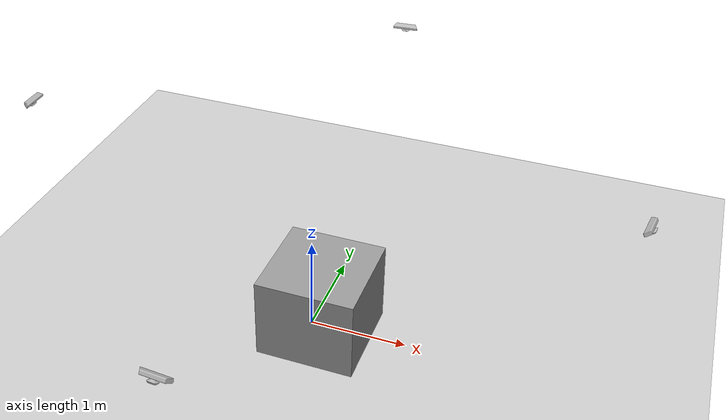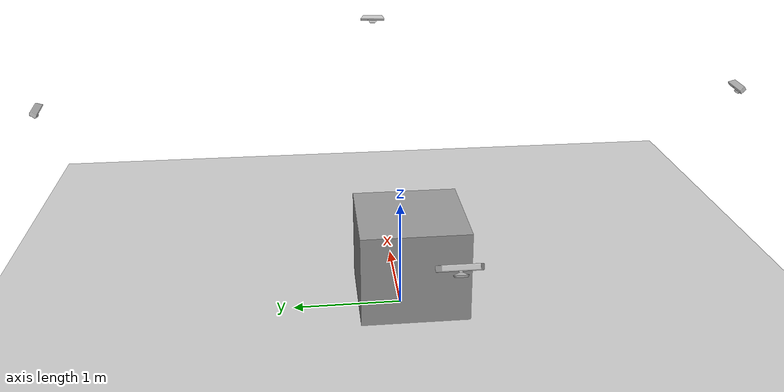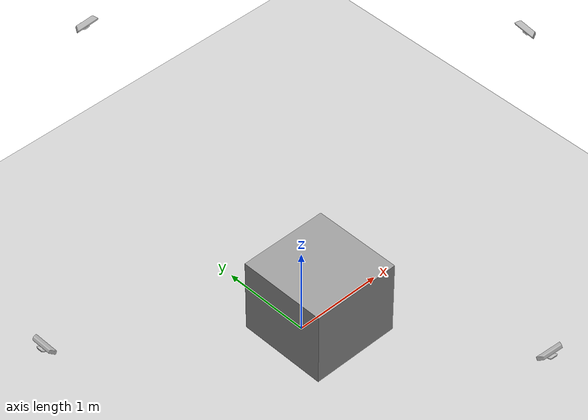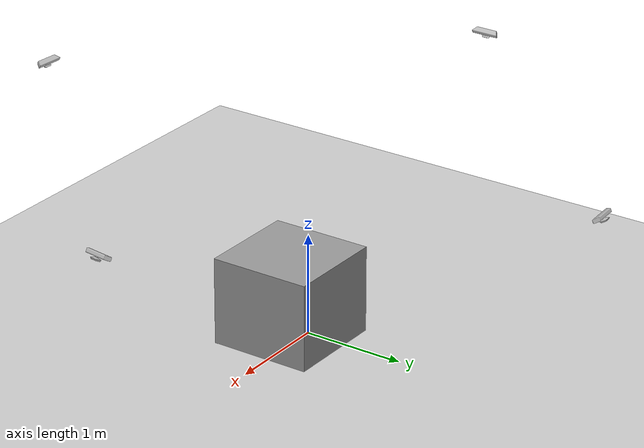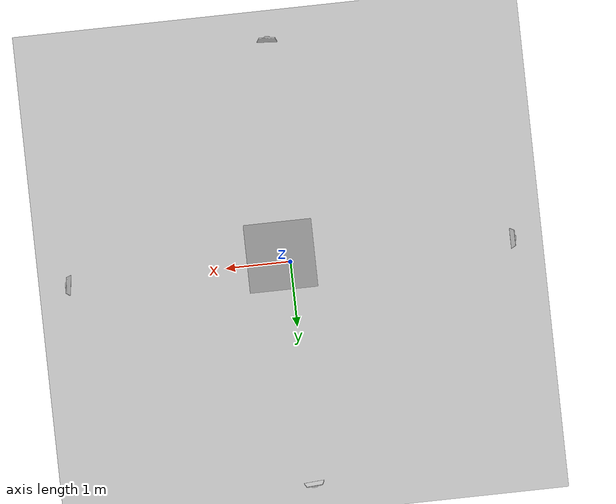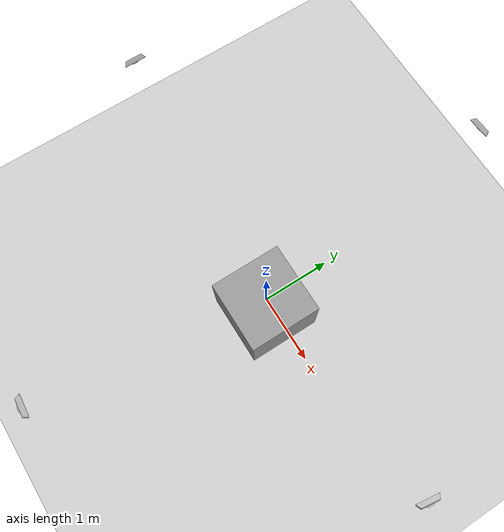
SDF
<sdf version="1.7">
 <world name="default">
  <light name="sun" type="directional">
   <pose>0 0 10 0 -0 0</pose>
   <diffuse>0.8 0.8 0.8 1</diffuse>
   <specular>0.2 0.2 0.2 1</specular>
   <attenuation>
    <range>1000</range>
    <constant>0.9</constant>
    <linear>0.01</linear>
    <quadratic>0.001</quadratic>
   </attenuation>
   <direction>-0.5 0.1 -0.9</direction>
   <spot><inner_angle>0</inner_angle><outer_angle>0</outer_angle><falloff>0</falloff></spot>
  </light>
  <model name="ground_plane">
   <static>1</static>
   <link name="link">
    <collision name="collision">
     <geometry><plane><normal>0 0 1</normal><size>100 100</size></plane></geometry>
     <surface>
      <contact><collide_bitmask>65535</collide_bitmask></contact>
      <friction><ode><mu>100</mu><mu2>50</mu2></ode></friction>
     </surface>
    </collision>
    <visual name="visual">
     <cast_shadows>0</cast_shadows>
     <geometry><plane><normal>0 0 1</normal><size>100 100</size></plane></geometry>
     <material>
      <script><uri>file://media/materials/scripts/gazebo.material</uri><name>Gazebo/Grey</name></script>
     </material>
    </visual>
   </link>
  </model>
  <gravity>0 0 -9.8</gravity>
  <magnetic_field>6e-06 2.3e-05 -4.2e-05</magnetic_field>
  <atmosphere type="adiabatic"/>
  <physics type="ode">
   <max_step_size>0.001</max_step_size>
   <real_time_factor>1</real_time_factor>
   <real_time_update_rate>1000</real_time_update_rate>
  </physics>
  <scene><ambient>0.4 0.4 0.4 1</ambient><background>0.7 0.7 0.7 1</background><shadows>1</shadows></scene>
  <spherical_coordinates>
   <surface_model>EARTH_WGS84</surface_model>
   <latitude_deg>0</latitude_deg>
   <longitude_deg>0</longitude_deg>
   <elevation>0</elevation>
   <heading_deg>0</heading_deg>
  </spherical_coordinates>
  <model name="kinect1">
   <static>1</static>
   <pose>0 -3 2 -0 0.5 1.5</pose>
   <link name="link">
    <inertial>
     <mass>0.1</mass>
     <inertia><ixx>1</ixx><ixy>0</ixy><ixz>0</ixz><iyy>1</iyy><iyz>0</iyz><izz>1</izz></inertia>
    </inertial>
    <collision name="collision"><geometry><box><size>0.073 0.276 0.072</size></box></geometry></collision>
    <visual name="visual"><geometry><mesh><uri>model://kinect/meshes/kinect.dae</uri></mesh></geometry></visual>
    <sensor name="camera" type="depth">
     <update_rate>20</update_rate>
     <camera>
      <horizontal_fov>1.0472</horizontal_fov>
      <image><width>1280</width><height>720</height><format>R8G8B8</format></image>
      <clip><near>0.05</near><far>10</far></clip>
     </camera>
     <plugin name="camera_plugin" filename="libgazebo_ros_openni_kinect.so">
      <baseline>0.2</baseline>
      <alwaysOn>1</alwaysOn>
      <updateRate>0.0</updateRate>
      <cameraName>camera1</cameraName>
      <imageTopicName>/camera1/color/image_raw</imageTopicName>
      <cameraInfoTopicName>/camera1/color/camera_info</cameraInfoTopicName>
      <depthImageTopicName>/camera1/depth/image_raw</depthImageTopicName>
      <depthImageCameraInfoTopicName>/camera1/depth/camera_info</depthImageCameraInfoTopicName>
      <pointCloudTopicName>/camera1/depth/points</pointCloudTopicName>
      <frameName>camera_link</frameName>
      <pointCloudCutoff>0.5</pointCloudCutoff>
      <pointCloudCutoffMax>30.0</pointCloudCutoffMax>
      <distortionK1>0</distortionK1>
      <distortionK2>0</distortionK2>
      <distortionK3>0</distortionK3>
      <distortionT1>0</distortionT1>
      <distortionT2>0</distortionT2>
      <CxPrime>0</CxPrime>
      <Cx>0</Cx>
      <Cy>0</Cy>
      <focalLength>0</focalLength>
      <hackBaseline>0</hackBaseline>
     </plugin>
    </sensor>
   </link>
  </model>
  <model name="kinect2">
   <static>1</static>
   <pose>0 3 2 0 0.5 -1.5</pose>
   <link name="link">
    <inertial>
     <mass>0.1</mass>
     <inertia><ixx>1</ixx><ixy>0</ixy><ixz>0</ixz><iyy>1</iyy><iyz>0</iyz><izz>1</izz></inertia>
    </inertial>
    <collision name="collision"><geometry><box><size>0.073 0.276 0.072</size></box></geometry></collision>
    <visual name="visual"><geometry><mesh><uri>model://kinect/meshes/kinect.dae</uri></mesh></geometry></visual>
    <sensor name="camera" type="depth">
     <update_rate>20</update_rate>
     <camera>
      <horizontal_fov>1.0472</horizontal_fov>
      <image><width>1280</width><height>720</height><format>R8G8B8</format></image>
      <clip><near>0.05</near><far>10</far></clip>
     </camera>
     <plugin name="camera_plugin" filename="libgazebo_ros_openni_kinect.so">
      <baseline>0.2</baseline>
      <alwaysOn>1</alwaysOn>
      <updateRate>0.0</updateRate>
      <cameraName>camera2</cameraName>
      <imageTopicName>/camera2/color/image_raw</imageTopicName>
      <cameraInfoTopicName>/camera2/color/camera_info</cameraInfoTopicName>
      <depthImageTopicName>/camera2/depth/image_raw</depthImageTopicName>
      <depthImageCameraInfoTopicName>/camera2/depth/camera_info</depthImageCameraInfoTopicName>
      <pointCloudTopicName>/camera2/depth/points</pointCloudTopicName>
      <frameName>camera_link</frameName>
      <pointCloudCutoff>0.5</pointCloudCutoff>
      <pointCloudCutoffMax>30.0</pointCloudCutoffMax>
      <distortionK1>0</distortionK1>
      <distortionK2>0</distortionK2>
      <distortionK3>0</distortionK3>
      <distortionT1>0</distortionT1>
      <distortionT2>0</distortionT2>
      <CxPrime>0</CxPrime>
      <Cx>0</Cx>
      <Cy>0</Cy>
      <focalLength>0</focalLength>
      <hackBaseline>0</hackBaseline>
     </plugin>
    </sensor>
   </link>
  </model>
  <model name="kinect3">
   <static>1</static>
   <pose>3 0 2 0 0.5 3</pose>
   <link name="link">
    <inertial>
     <mass>0.1</mass>
     <inertia><ixx>1</ixx><ixy>0</ixy><ixz>0</ixz><iyy>1</iyy><iyz>0</iyz><izz>1</izz></inertia>
    </inertial>
    <collision name="collision"><geometry><box><size>0.073 0.276 0.072</size></box></geometry></collision>
    <visual name="visual"><geometry><mesh><uri>model://kinect/meshes/kinect.dae</uri></mesh></geometry></visual>
    <sensor name="camera" type="depth">
     <update_rate>20</update_rate>
     <camera>
      <horizontal_fov>1.0472</horizontal_fov>
      <image><width>1280</width><height>720</height><format>R8G8B8</format></image>
      <clip><near>0.05</near><far>10</far></clip>
     </camera>
     <plugin name="camera_plugin" filename="libgazebo_ros_openni_kinect.so">
      <baseline>0.2</baseline>
      <alwaysOn>1</alwaysOn>
      <updateRate>0.0</updateRate>
      <cameraName>camera3</cameraName>
      <imageTopicName>/camera3/color/image_raw</imageTopicName>
      <cameraInfoTopicName>/camera3/color/camera_info</cameraInfoTopicName>
      <depthImageTopicName>/camera3/depth/image_raw</depthImageTopicName>
      <depthImageCameraInfoTopicName>/camera3/depth/camera_info</depthImageCameraInfoTopicName>
      <pointCloudTopicName>/camera3/depth/points</pointCloudTopicName>
      <frameName>camera_link</frameName>
      <pointCloudCutoff>0.5</pointCloudCutoff>
      <pointCloudCutoffMax>30.0</pointCloudCutoffMax>
      <distortionK1>0</distortionK1>
      <distortionK2>0</distortionK2>
      <distortionK3>0</distortionK3>
      <distortionT1>0</distortionT1>
      <distortionT2>0</distortionT2>
      <CxPrime>0</CxPrime>
      <Cx>0</Cx>
      <Cy>0</Cy>
      <focalLength>0</focalLength>
      <hackBaseline>0</hackBaseline>
     </plugin>
    </sensor>
   </link>
  </model>
  <model name="kinect4">
   <static>1</static>
   <pose>-3 0 2 0 0.5 0</pose>
   <link name="link">
    <inertial>
     <mass>0.1</mass>
     <inertia><ixx>1</ixx><ixy>0</ixy><ixz>0</ixz><iyy>1</iyy><iyz>0</iyz><izz>1</izz></inertia>
    </inertial>
    <collision name="collision"><geometry><box><size>0.073 0.276 0.072</size></box></geometry></collision>
    <visual name="visual"><geometry><mesh><uri>model://kinect/meshes/kinect.dae</uri></mesh></geometry></visual>
    <sensor name="camera" type="depth">
     <update_rate>20</update_rate>
     <camera>
      <horizontal_fov>1.0472</horizontal_fov>
      <image><width>1280</width><height>720</height><format>R8G8B8</format></image>
      <clip><near>0.05</near><far>10</far></clip>
     </camera>
     <plugin name="camera_plugin" filename="libgazebo_ros_openni_kinect.so">
      <baseline>0.2</baseline>
      <alwaysOn>1</alwaysOn>
      <updateRate>0.0</updateRate>
      <cameraName>camera4</cameraName>
      <imageTopicName>/camera4/color/image_raw</imageTopicName>
      <cameraInfoTopicName>/camera4/color/camera_info</cameraInfoTopicName>
      <depthImageTopicName>/camera4/depth/image_raw</depthImageTopicName>
      <depthImageCameraInfoTopicName>/camera4/depth/camera_info</depthImageCameraInfoTopicName>
      <pointCloudTopicName>/camera4/depth/points</pointCloudTopicName>
      <frameName>camera_link</frameName>
      <pointCloudCutoff>0.5</pointCloudCutoff>
      <pointCloudCutoffMax>30.0</pointCloudCutoffMax>
      <distortionK1>0</distortionK1>
      <distortionK2>0</distortionK2>
      <distortionK3>0</distortionK3>
      <distortionT1>0</distortionT1>
      <distortionT2>0</distortionT2>
      <CxPrime>0</CxPrime>
      <Cx>0</Cx>
      <Cy>0</Cy>
      <focalLength>0</focalLength>
      <hackBaseline>0</hackBaseline>
     </plugin>
    </sensor>
   </link>
  </model>
  <model name="unit_box">
   <pose>0.137074 -0.104651 0.352323 0 -0 0</pose>
   <link name="link">
    <inertial>
     <mass>1</mass>
     <inertia>
      <ixx>0.166667</ixx>
      <ixy>0</ixy>
      <ixz>0</ixz>
      <iyy>0.166667</iyy>
      <iyz>0</iyz>
      <izz>0.166667</izz>
     </inertia>
    </inertial>
    <collision name="collision">
     <geometry><box><size>1 1 1</size></box></geometry>
     <surface>
      <ode><max_vel>10</max_vel></ode>
      <bounce><restitution_coefficient>1</restitution_coefficient><threshold>0</threshold></bounce>
     </surface>
    </collision>
    <visual name="visual">
     <geometry><box><size>1 1 1</size></box></geometry>
     <material>
      <script><name>Gazebo/Grey</name><uri>file://media/materials/scripts/gazebo.material</uri></script>
     </material>
    </visual>
   </link>
  </model>
 </world>
</sdf>
